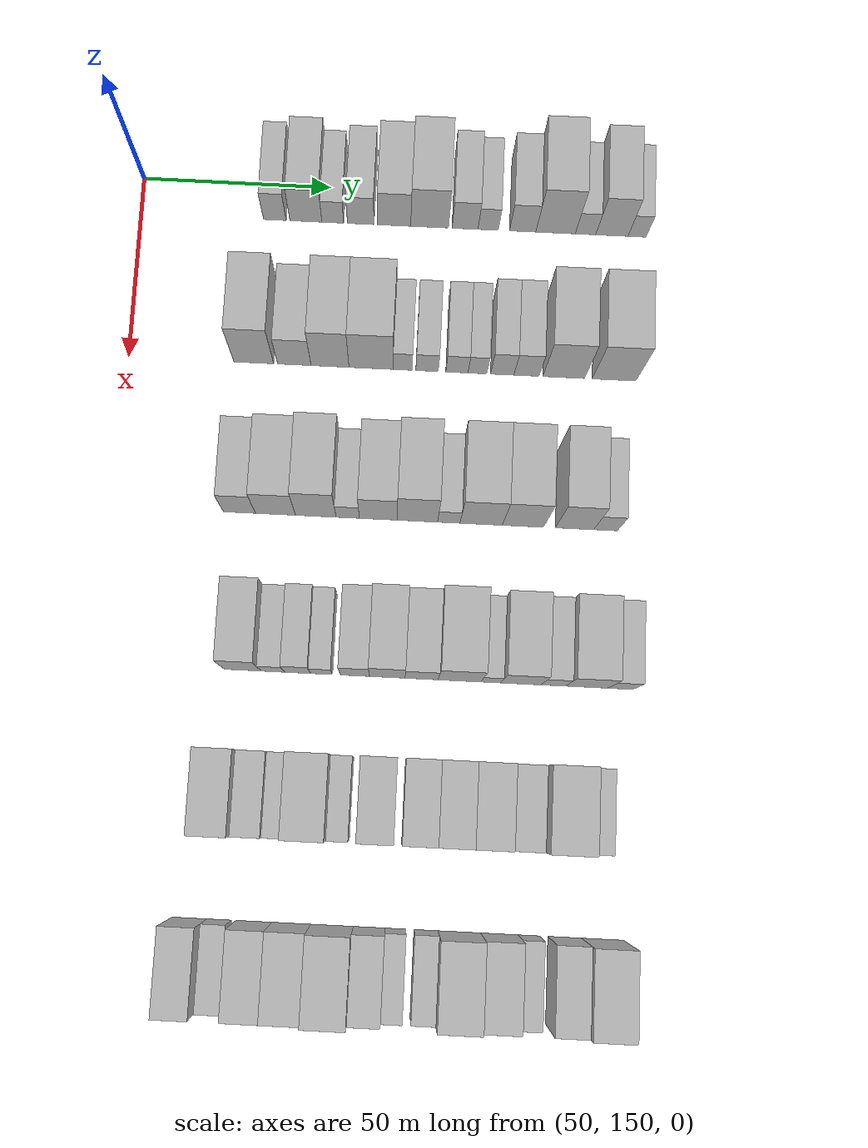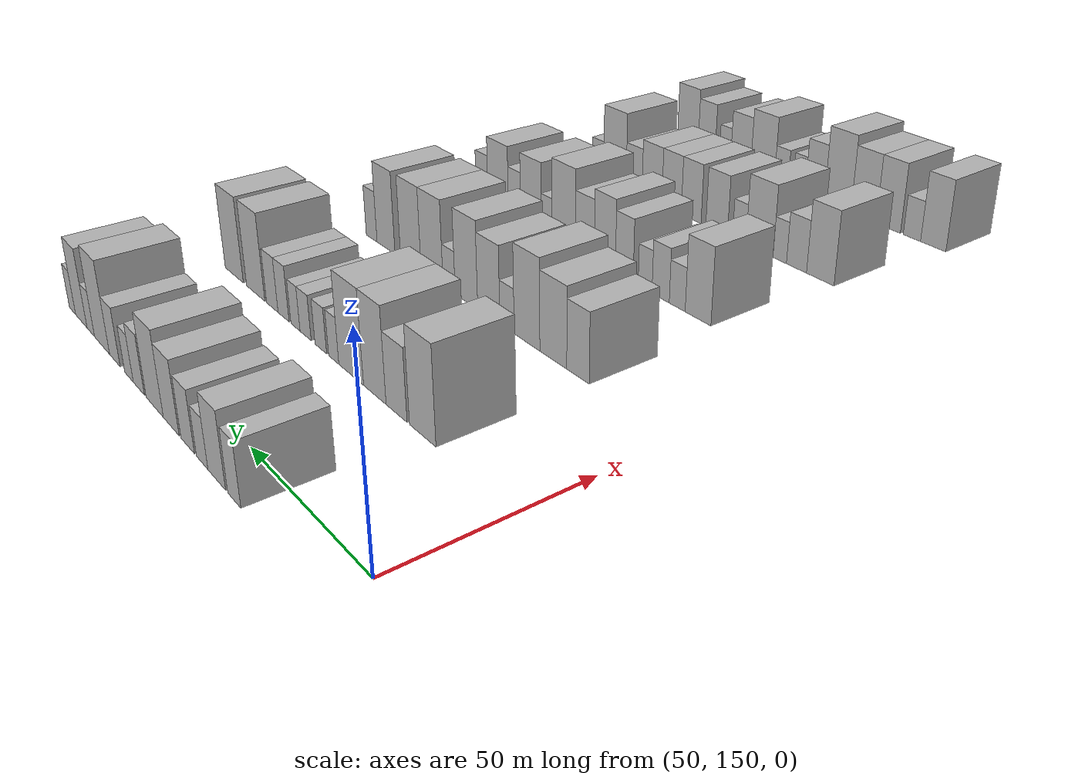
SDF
<sdf version="1.6">
 <world name="default">
  <model name="building_88">
   <static>1</static>
   <pose>50.0000 185.5479 0 0.000000 0.000000 0.000000</pose>
   <link name="link">
    <pose>0 0 7.50 0 0 0</pose>
    <collision name="collision"><geometry><box><size>20.0000 6.0208 15.0000</size></box></geometry></collision>
    <visual name="visual">
     <cast_shadows>0</cast_shadows>
     <geometry><box><size>20.0000 6.0208 15.0000</size></box></geometry>
     <material>
      <script>
       <uri>model://HANNAS_wall/materials/scripts</uri>
       <uri>model://HANNAS_wall/materials/textures</uri>
       <name>vrc/HANNAS_wall</name>
      </script>
     </material>
    </visual>
   </link>
  </model>
  <model name="building_89">
   <static>1</static>
   <pose>50.0000 193.8191 0 0.000000 0.000000 0.000000</pose>
   <link name="link">
    <pose>0 0 9.00 0 0 0</pose>
    <collision name="collision"><geometry><box><size>20.0000 8.5216 18.0000</size></box></geometry></collision>
    <visual name="visual">
     <cast_shadows>0</cast_shadows>
     <geometry><box><size>20.0000 8.5216 18.0000</size></box></geometry>
     <material>
      <script>
       <uri>model://HANNAS_wall/materials/scripts</uri>
       <uri>model://HANNAS_wall/materials/textures</uri>
       <name>vrc/HANNAS_wall</name>
      </script>
     </material>
    </visual>
   </link>
  </model>
  <model name="building_90">
   <static>1</static>
   <pose>50.0000 200.9719 0 0.000000 0.000000 0.000000</pose>
   <link name="link">
    <pose>0 0 6.00 0 0 0</pose>
    <collision name="collision"><geometry><box><size>20.0000 5.7839 12.0000</size></box></geometry></collision>
    <visual name="visual">
     <cast_shadows>0</cast_shadows>
     <geometry><box><size>20.0000 5.7839 12.0000</size></box></geometry>
     <material>
      <script>
       <uri>model://HANNAS_wall/materials/scripts</uri>
       <uri>model://HANNAS_wall/materials/textures</uri>
       <name>vrc/HANNAS_wall</name>
      </script>
     </material>
    </visual>
   </link>
  </model>
  <model name="building_91">
   <static>1</static>
   <pose>50.0000 208.3993 0 0.000000 0.000000 0.000000</pose>
   <link name="link">
    <pose>0 0 7.50 0 0 0</pose>
    <collision name="collision"><geometry><box><size>20.0000 7.0708 15.0000</size></box></geometry></collision>
    <visual name="visual">
     <cast_shadows>0</cast_shadows>
     <geometry><box><size>20.0000 7.0708 15.0000</size></box></geometry>
     <material>
      <script>
       <uri>model://HANNAS_wall/materials/scripts</uri>
       <uri>model://HANNAS_wall/materials/textures</uri>
       <name>vrc/HANNAS_wall</name>
      </script>
     </material>
    </visual>
   </link>
  </model>
  <model name="building_92">
   <static>1</static>
   <pose>50.0000 217.3159 0 0.000000 0.000000 0.000000</pose>
   <link name="link">
    <pose>0 0 9.00 0 0 0</pose>
    <collision name="collision"><geometry><box><size>20.0000 8.7624 18.0000</size></box></geometry></collision>
    <visual name="visual">
     <cast_shadows>0</cast_shadows>
     <geometry><box><size>20.0000 8.7624 18.0000</size></box></geometry>
     <material>
      <script>
       <uri>model://HANNAS_wall/materials/scripts</uri>
       <uri>model://HANNAS_wall/materials/textures</uri>
       <name>vrc/HANNAS_wall</name>
      </script>
     </material>
    </visual>
   </link>
  </model>
  <model name="building_93">
   <static>1</static>
   <pose>50.0000 226.7034 0 0.000000 0.000000 0.000000</pose>
   <link name="link">
    <pose>0 0 10.50 0 0 0</pose>
    <collision name="collision"><geometry><box><size>20.0000 10.0126 21.0000</size></box></geometry></collision>
    <visual name="visual">
     <cast_shadows>0</cast_shadows>
     <geometry><box><size>20.0000 10.0126 21.0000</size></box></geometry>
     <material>
      <script>
       <uri>model://HANNAS_wall/materials/scripts</uri>
       <uri>model://HANNAS_wall/materials/textures</uri>
       <name>vrc/HANNAS_wall</name>
      </script>
     </material>
    </visual>
   </link>
  </model>
  <model name="building_94">
   <static>1</static>
   <pose>50.0000 236.1503 0 0.000000 0.000000 0.000000</pose>
   <link name="link">
    <pose>0 0 7.50 0 0 0</pose>
    <collision name="collision"><geometry><box><size>20.0000 6.8812 15.0000</size></box></geometry></collision>
    <visual name="visual">
     <cast_shadows>0</cast_shadows>
     <geometry><box><size>20.0000 6.8812 15.0000</size></box></geometry>
     <material>
      <script>
       <uri>model://HANNAS_wall/materials/scripts</uri>
       <uri>model://HANNAS_wall/materials/textures</uri>
       <name>vrc/HANNAS_wall</name>
      </script>
     </material>
    </visual>
   </link>
  </model>
  <model name="building_95">
   <static>1</static>
   <pose>50.0000 242.2823 0 0.000000 0.000000 0.000000</pose>
   <link name="link">
    <pose>0 0 6.00 0 0 0</pose>
    <collision name="collision"><geometry><box><size>20.0000 5.3827 12.0000</size></box></geometry></collision>
    <visual name="visual">
     <cast_shadows>0</cast_shadows>
     <geometry><box><size>20.0000 5.3827 12.0000</size></box></geometry>
     <material>
      <script>
       <uri>model://HANNAS_wall/materials/scripts</uri>
       <uri>model://HANNAS_wall/materials/textures</uri>
       <name>vrc/HANNAS_wall</name>
      </script>
     </material>
    </visual>
   </link>
  </model>
  <model name="building_96">
   <static>1</static>
   <pose>50.0000 251.4615 0 0.000000 0.000000 0.000000</pose>
   <link name="link">
    <pose>0 0 7.50 0 0 0</pose>
    <collision name="collision"><geometry><box><size>20.0000 6.9756 15.0000</size></box></geometry></collision>
    <visual name="visual">
     <cast_shadows>0</cast_shadows>
     <geometry><box><size>20.0000 6.9756 15.0000</size></box></geometry>
     <material>
      <script>
       <uri>model://HANNAS_wall/materials/scripts</uri>
       <uri>model://HANNAS_wall/materials/textures</uri>
       <name>vrc/HANNAS_wall</name>
      </script>
     </material>
    </visual>
   </link>
  </model>
  <model name="building_97">
   <static>1</static>
   <pose>50.0000 260.1870 0 0.000000 0.000000 0.000000</pose>
   <link name="link">
    <pose>0 0 12.00 0 0 0</pose>
    <collision name="collision"><geometry><box><size>20.0000 10.4755 24.0000</size></box></geometry></collision>
    <visual name="visual">
     <cast_shadows>0</cast_shadows>
     <geometry><box><size>20.0000 10.4755 24.0000</size></box></geometry>
     <material>
      <script>
       <uri>model://HANNAS_wall/materials/scripts</uri>
       <uri>model://HANNAS_wall/materials/textures</uri>
       <name>vrc/HANNAS_wall</name>
      </script>
     </material>
    </visual>
   </link>
  </model>
  <model name="building_98">
   <static>1</static>
   <pose>50.0000 268.1275 0 0.000000 0.000000 0.000000</pose>
   <link name="link">
    <pose>0 0 6.00 0 0 0</pose>
    <collision name="collision"><geometry><box><size>20.0000 5.4055 12.0000</size></box></geometry></collision>
    <visual name="visual">
     <cast_shadows>0</cast_shadows>
     <geometry><box><size>20.0000 5.4055 12.0000</size></box></geometry>
     <material>
      <script>
       <uri>model://HANNAS_wall/materials/scripts</uri>
       <uri>model://HANNAS_wall/materials/textures</uri>
       <name>vrc/HANNAS_wall</name>
      </script>
     </material>
    </visual>
   </link>
  </model>
  <model name="building_99">
   <static>1</static>
   <pose>50.0000 275.1140 0 0.000000 0.000000 0.000000</pose>
   <link name="link">
    <pose>0 0 10.50 0 0 0</pose>
    <collision name="collision"><geometry><box><size>20.0000 8.5675 21.0000</size></box></geometry></collision>
    <visual name="visual">
     <cast_shadows>0</cast_shadows>
     <geometry><box><size>20.0000 8.5675 21.0000</size></box></geometry>
     <material>
      <script>
       <uri>model://HANNAS_wall/materials/scripts</uri>
       <uri>model://HANNAS_wall/materials/textures</uri>
       <name>vrc/HANNAS_wall</name>
      </script>
     </material>
    </visual>
   </link>
  </model>
  <model name="building_100">
   <static>1</static>
   <pose>50.0000 281.7993 0 0.000000 0.000000 0.000000</pose>
   <link name="link">
    <pose>0 0 6.00 0 0 0</pose>
    <collision name="collision"><geometry><box><size>20.0000 4.8031 12.0000</size></box></geometry></collision>
    <visual name="visual">
     <cast_shadows>0</cast_shadows>
     <geometry><box><size>20.0000 4.8031 12.0000</size></box></geometry>
     <material>
      <script>
       <uri>model://HANNAS_wall/materials/scripts</uri>
       <uri>model://HANNAS_wall/materials/textures</uri>
       <name>vrc/HANNAS_wall</name>
      </script>
     </material>
    </visual>
   </link>
  </model>
  <model name="building_219">
   <static>1</static>
   <pose>90.0000 182.7265 0 0.000000 0.000000 0.000000</pose>
   <link name="link">
    <pose>0 0 12.00 0 0 0</pose>
    <collision name="collision"><geometry><box><size>20.0000 10.3787 24.0000</size></box></geometry></collision>
    <visual name="visual">
     <cast_shadows>0</cast_shadows>
     <geometry><box><size>20.0000 10.3787 24.0000</size></box></geometry>
     <material>
      <script>
       <uri>model://HANNAS_wall/materials/scripts</uri>
       <uri>model://HANNAS_wall/materials/textures</uri>
       <name>vrc/HANNAS_wall</name>
      </script>
     </material>
    </visual>
   </link>
  </model>
  <model name="building_220">
   <static>1</static>
   <pose>90.0000 193.2791 0 0.000000 0.000000 0.000000</pose>
   <link name="link">
    <pose>0 0 9.00 0 0 0</pose>
    <collision name="collision"><geometry><box><size>20.0000 8.7265 18.0000</size></box></geometry></collision>
    <visual name="visual">
     <cast_shadows>0</cast_shadows>
     <geometry><box><size>20.0000 8.7265 18.0000</size></box></geometry>
     <material>
      <script>
       <uri>model://HANNAS_wall/materials/scripts</uri>
       <uri>model://HANNAS_wall/materials/textures</uri>
       <name>vrc/HANNAS_wall</name>
      </script>
     </material>
    </visual>
   </link>
  </model>
  <model name="building_221">
   <static>1</static>
   <pose>90.0000 202.5795 0 0.000000 0.000000 0.000000</pose>
   <link name="link">
    <pose>0 0 12.00 0 0 0</pose>
    <collision name="collision"><geometry><box><size>20.0000 9.8742 24.0000</size></box></geometry></collision>
    <visual name="visual">
     <cast_shadows>0</cast_shadows>
     <geometry><box><size>20.0000 9.8742 24.0000</size></box></geometry>
     <material>
      <script>
       <uri>model://HANNAS_wall/materials/scripts</uri>
       <uri>model://HANNAS_wall/materials/textures</uri>
       <name>vrc/HANNAS_wall</name>
      </script>
     </material>
    </visual>
   </link>
  </model>
  <model name="building_222">
   <static>1</static>
   <pose>90.0000 213.2539 0 0.000000 0.000000 0.000000</pose>
   <link name="link">
    <pose>0 0 12.00 0 0 0</pose>
    <collision name="collision"><geometry><box><size>20.0000 11.4746 24.0000</size></box></geometry></collision>
    <visual name="visual">
     <cast_shadows>0</cast_shadows>
     <geometry><box><size>20.0000 11.4746 24.0000</size></box></geometry>
     <material>
      <script>
       <uri>model://HANNAS_wall/materials/scripts</uri>
       <uri>model://HANNAS_wall/materials/textures</uri>
       <name>vrc/HANNAS_wall</name>
      </script>
     </material>
    </visual>
   </link>
  </model>
  <model name="building_223">
   <static>1</static>
   <pose>90.0000 221.4428 0 0.000000 0.000000 0.000000</pose>
   <link name="link">
    <pose>0 0 6.00 0 0 0</pose>
    <collision name="collision"><geometry><box><size>20.0000 4.9032 12.0000</size></box></geometry></collision>
    <visual name="visual">
     <cast_shadows>0</cast_shadows>
     <geometry><box><size>20.0000 4.9032 12.0000</size></box></geometry>
     <material>
      <script>
       <uri>model://HANNAS_wall/materials/scripts</uri>
       <uri>model://HANNAS_wall/materials/textures</uri>
       <name>vrc/HANNAS_wall</name>
      </script>
     </material>
    </visual>
   </link>
  </model>
  <model name="building_224">
   <static>1</static>
   <pose>90.0000 227.7942 0 0.000000 0.000000 0.000000</pose>
   <link name="link">
    <pose>0 0 6.00 0 0 0</pose>
    <collision name="collision"><geometry><box><size>20.0000 5.7995 12.0000</size></box></geometry></collision>
    <visual name="visual">
     <cast_shadows>0</cast_shadows>
     <geometry><box><size>20.0000 5.7995 12.0000</size></box></geometry>
     <material>
      <script>
       <uri>model://HANNAS_wall/materials/scripts</uri>
       <uri>model://HANNAS_wall/materials/textures</uri>
       <name>vrc/HANNAS_wall</name>
      </script>
     </material>
    </visual>
   </link>
  </model>
  <model name="building_225">
   <static>1</static>
   <pose>90.0000 235.5747 0 0.000000 0.000000 0.000000</pose>
   <link name="link">
    <pose>0 0 6.00 0 0 0</pose>
    <collision name="collision"><geometry><box><size>20.0000 5.7617 12.0000</size></box></geometry></collision>
    <visual name="visual">
     <cast_shadows>0</cast_shadows>
     <geometry><box><size>20.0000 5.7617 12.0000</size></box></geometry>
     <material>
      <script>
       <uri>model://HANNAS_wall/materials/scripts</uri>
       <uri>model://HANNAS_wall/materials/textures</uri>
       <name>vrc/HANNAS_wall</name>
      </script>
     </material>
    </visual>
   </link>
  </model>
  <model name="building_226">
   <static>1</static>
   <pose>90.0000 240.8877 0 0.000000 0.000000 0.000000</pose>
   <link name="link">
    <pose>0 0 6.00 0 0 0</pose>
    <collision name="collision"><geometry><box><size>20.0000 4.8642 12.0000</size></box></geometry></collision>
    <visual name="visual">
     <cast_shadows>0</cast_shadows>
     <geometry><box><size>20.0000 4.8642 12.0000</size></box></geometry>
     <material>
      <script>
       <uri>model://HANNAS_wall/materials/scripts</uri>
       <uri>model://HANNAS_wall/materials/textures</uri>
       <name>vrc/HANNAS_wall</name>
      </script>
     </material>
    </visual>
   </link>
  </model>
  <model name="building_227">
   <static>1</static>
   <pose>90.0000 247.3505 0 0.000000 0.000000 0.000000</pose>
   <link name="link">
    <pose>0 0 7.50 0 0 0</pose>
    <collision name="collision"><geometry><box><size>20.0000 6.0615 15.0000</size></box></geometry></collision>
    <visual name="visual">
     <cast_shadows>0</cast_shadows>
     <geometry><box><size>20.0000 6.0615 15.0000</size></box></geometry>
     <material>
      <script>
       <uri>model://HANNAS_wall/materials/scripts</uri>
       <uri>model://HANNAS_wall/materials/textures</uri>
       <name>vrc/HANNAS_wall</name>
      </script>
     </material>
    </visual>
   </link>
  </model>
  <model name="building_228">
   <static>1</static>
   <pose>90.0000 253.6499 0 0.000000 0.000000 0.000000</pose>
   <link name="link">
    <pose>0 0 7.50 0 0 0</pose>
    <collision name="collision"><geometry><box><size>20.0000 6.5373 15.0000</size></box></geometry></collision>
    <visual name="visual">
     <cast_shadows>0</cast_shadows>
     <geometry><box><size>20.0000 6.5373 15.0000</size></box></geometry>
     <material>
      <script>
       <uri>model://HANNAS_wall/materials/scripts</uri>
       <uri>model://HANNAS_wall/materials/textures</uri>
       <name>vrc/HANNAS_wall</name>
      </script>
     </material>
    </visual>
   </link>
  </model>
  <model name="building_229">
   <static>1</static>
   <pose>90.0000 263.3244 0 0.000000 0.000000 0.000000</pose>
   <link name="link">
    <pose>0 0 12.00 0 0 0</pose>
    <collision name="collision"><geometry><box><size>20.0000 10.8117 24.0000</size></box></geometry></collision>
    <visual name="visual">
     <cast_shadows>0</cast_shadows>
     <geometry><box><size>20.0000 10.8117 24.0000</size></box></geometry>
     <material>
      <script>
       <uri>model://HANNAS_wall/materials/scripts</uri>
       <uri>model://HANNAS_wall/materials/textures</uri>
       <name>vrc/HANNAS_wall</name>
      </script>
     </material>
    </visual>
   </link>
  </model>
  <model name="building_230">
   <static>1</static>
   <pose>90.0000 276.4194 0 0.000000 0.000000 0.000000</pose>
   <link name="link">
    <pose>0 0 12.00 0 0 0</pose>
    <collision name="collision"><geometry><box><size>20.0000 11.3784 24.0000</size></box></geometry></collision>
    <visual name="visual">
     <cast_shadows>0</cast_shadows>
     <geometry><box><size>20.0000 11.3784 24.0000</size></box></geometry>
     <material>
      <script>
       <uri>model://HANNAS_wall/materials/scripts</uri>
       <uri>model://HANNAS_wall/materials/textures</uri>
       <name>vrc/HANNAS_wall</name>
      </script>
     </material>
    </visual>
   </link>
  </model>
  <model name="building_353">
   <static>1</static>
   <pose>130.0000 181.8724 0 0.000000 0.000000 0.000000</pose>
   <link name="link">
    <pose>0 0 9.00 0 0 0</pose>
    <collision name="collision"><geometry><box><size>20.0000 8.1580 18.0000</size></box></geometry></collision>
    <visual name="visual">
     <cast_shadows>0</cast_shadows>
     <geometry><box><size>20.0000 8.1580 18.0000</size></box></geometry>
     <material>
      <script>
       <uri>model://HANNAS_wall/materials/scripts</uri>
       <uri>model://HANNAS_wall/materials/textures</uri>
       <name>vrc/HANNAS_wall</name>
      </script>
     </material>
    </visual>
   </link>
  </model>
  <model name="building_354">
   <static>1</static>
   <pose>130.0000 191.0557 0 0.000000 0.000000 0.000000</pose>
   <link name="link">
    <pose>0 0 10.50 0 0 0</pose>
    <collision name="collision"><geometry><box><size>20.0000 10.2086 21.0000</size></box></geometry></collision>
    <visual name="visual">
     <cast_shadows>0</cast_shadows>
     <geometry><box><size>20.0000 10.2086 21.0000</size></box></geometry>
     <material>
      <script>
       <uri>model://HANNAS_wall/materials/scripts</uri>
       <uri>model://HANNAS_wall/materials/textures</uri>
       <name>vrc/HANNAS_wall</name>
      </script>
     </material>
    </visual>
   </link>
  </model>
  <model name="building_355">
   <static>1</static>
   <pose>130.0000 201.3014 0 0.000000 0.000000 0.000000</pose>
   <link name="link">
    <pose>0 0 12.00 0 0 0</pose>
    <collision name="collision"><geometry><box><size>20.0000 10.2827 24.0000</size></box></geometry></collision>
    <visual name="visual">
     <cast_shadows>0</cast_shadows>
     <geometry><box><size>20.0000 10.2827 24.0000</size></box></geometry>
     <material>
      <script>
       <uri>model://HANNAS_wall/materials/scripts</uri>
       <uri>model://HANNAS_wall/materials/textures</uri>
       <name>vrc/HANNAS_wall</name>
      </script>
     </material>
    </visual>
   </link>
  </model>
  <model name="building_356">
   <static>1</static>
   <pose>130.0000 209.4128 0 0.000000 0.000000 0.000000</pose>
   <link name="link">
    <pose>0 0 6.00 0 0 0</pose>
    <collision name="collision"><geometry><box><size>20.0000 5.9401 12.0000</size></box></geometry></collision>
    <visual name="visual">
     <cast_shadows>0</cast_shadows>
     <geometry><box><size>20.0000 5.9401 12.0000</size></box></geometry>
     <material>
      <script>
       <uri>model://HANNAS_wall/materials/scripts</uri>
       <uri>model://HANNAS_wall/materials/textures</uri>
       <name>vrc/HANNAS_wall</name>
      </script>
     </material>
    </visual>
   </link>
  </model>
  <model name="building_357">
   <static>1</static>
   <pose>130.0000 217.1887 0 0.000000 0.000000 0.000000</pose>
   <link name="link">
    <pose>0 0 10.50 0 0 0</pose>
    <collision name="collision"><geometry><box><size>20.0000 9.6116 21.0000</size></box></geometry></collision>
    <visual name="visual">
     <cast_shadows>0</cast_shadows>
     <geometry><box><size>20.0000 9.6116 21.0000</size></box></geometry>
     <material>
      <script>
       <uri>model://HANNAS_wall/materials/scripts</uri>
       <uri>model://HANNAS_wall/materials/textures</uri>
       <name>vrc/HANNAS_wall</name>
      </script>
     </material>
    </visual>
   </link>
  </model>
  <model name="building_358">
   <static>1</static>
   <pose>130.0000 227.1159 0 0.000000 0.000000 0.000000</pose>
   <link name="link">
    <pose>0 0 12.00 0 0 0</pose>
    <collision name="collision"><geometry><box><size>20.0000 10.2429 24.0000</size></box></geometry></collision>
    <visual name="visual">
     <cast_shadows>0</cast_shadows>
     <geometry><box><size>20.0000 10.2429 24.0000</size></box></geometry>
     <material>
      <script>
       <uri>model://HANNAS_wall/materials/scripts</uri>
       <uri>model://HANNAS_wall/materials/textures</uri>
       <name>vrc/HANNAS_wall</name>
      </script>
     </material>
    </visual>
   </link>
  </model>
  <model name="building_359">
   <static>1</static>
   <pose>130.0000 235.0881 0 0.000000 0.000000 0.000000</pose>
   <link name="link">
    <pose>0 0 6.00 0 0 0</pose>
    <collision name="collision"><geometry><box><size>20.0000 5.7014 12.0000</size></box></geometry></collision>
    <visual name="visual">
     <cast_shadows>0</cast_shadows>
     <geometry><box><size>20.0000 5.7014 12.0000</size></box></geometry>
     <material>
      <script>
       <uri>model://HANNAS_wall/materials/scripts</uri>
       <uri>model://HANNAS_wall/materials/textures</uri>
       <name>vrc/HANNAS_wall</name>
      </script>
     </material>
    </visual>
   </link>
  </model>
  <model name="building_360">
   <static>1</static>
   <pose>130.0000 243.3150 0 0.000000 0.000000 0.000000</pose>
   <link name="link">
    <pose>0 0 12.00 0 0 0</pose>
    <collision name="collision"><geometry><box><size>20.0000 10.7525 24.0000</size></box></geometry></collision>
    <visual name="visual">
     <cast_shadows>0</cast_shadows>
     <geometry><box><size>20.0000 10.7525 24.0000</size></box></geometry>
     <material>
      <script>
       <uri>model://HANNAS_wall/materials/scripts</uri>
       <uri>model://HANNAS_wall/materials/textures</uri>
       <name>vrc/HANNAS_wall</name>
      </script>
     </material>
    </visual>
   </link>
  </model>
  <model name="building_361">
   <static>1</static>
   <pose>130.0000 253.9416 0 0.000000 0.000000 0.000000</pose>
   <link name="link">
    <pose>0 0 12.00 0 0 0</pose>
    <collision name="collision"><geometry><box><size>20.0000 10.5008 24.0000</size></box></geometry></collision>
    <visual name="visual">
     <cast_shadows>0</cast_shadows>
     <geometry><box><size>20.0000 10.5008 24.0000</size></box></geometry>
     <material>
      <script>
       <uri>model://HANNAS_wall/materials/scripts</uri>
       <uri>model://HANNAS_wall/materials/textures</uri>
       <name>vrc/HANNAS_wall</name>
      </script>
     </material>
    </visual>
   </link>
  </model>
  <model name="building_362">
   <static>1</static>
   <pose>130.0000 267.0628 0 0.000000 0.000000 0.000000</pose>
   <link name="link">
    <pose>0 0 12.00 0 0 0</pose>
    <collision name="collision"><geometry><box><size>20.0000 9.7415 24.0000</size></box></geometry></collision>
    <visual name="visual">
     <cast_shadows>0</cast_shadows>
     <geometry><box><size>20.0000 9.7415 24.0000</size></box></geometry>
     <material>
      <script>
       <uri>model://HANNAS_wall/materials/scripts</uri>
       <uri>model://HANNAS_wall/materials/textures</uri>
       <name>vrc/HANNAS_wall</name>
      </script>
     </material>
    </visual>
   </link>
  </model>
  <model name="building_363">
   <static>1</static>
   <pose>130.0000 274.9419 0 0.000000 0.000000 0.000000</pose>
   <link name="link">
    <pose>0 0 7.50 0 0 0</pose>
    <collision name="collision"><geometry><box><size>20.0000 6.0169 15.0000</size></box></geometry></collision>
    <visual name="visual">
     <cast_shadows>0</cast_shadows>
     <geometry><box><size>20.0000 6.0169 15.0000</size></box></geometry>
     <material>
      <script>
       <uri>model://HANNAS_wall/materials/scripts</uri>
       <uri>model://HANNAS_wall/materials/textures</uri>
       <name>vrc/HANNAS_wall</name>
      </script>
     </material>
    </visual>
   </link>
  </model>
  <model name="building_495">
   <static>1</static>
   <pose>170.0000 185.5375 0 0.000000 0.000000 0.000000</pose>
   <link name="link">
    <pose>0 0 10.50 0 0 0</pose>
    <collision name="collision"><geometry><box><size>20.0000 9.1178 21.0000</size></box></geometry></collision>
    <visual name="visual">
     <cast_shadows>0</cast_shadows>
     <geometry><box><size>20.0000 9.1178 21.0000</size></box></geometry>
     <material>
      <script>
       <uri>model://HANNAS_wall/materials/scripts</uri>
       <uri>model://HANNAS_wall/materials/textures</uri>
       <name>vrc/HANNAS_wall</name>
      </script>
     </material>
    </visual>
   </link>
  </model>
  <model name="building_496">
   <static>1</static>
   <pose>170.0000 193.0262 0 0.000000 0.000000 0.000000</pose>
   <link name="link">
    <pose>0 0 6.00 0 0 0</pose>
    <collision name="collision"><geometry><box><size>20.0000 5.8596 12.0000</size></box></geometry></collision>
    <visual name="visual">
     <cast_shadows>0</cast_shadows>
     <geometry><box><size>20.0000 5.8596 12.0000</size></box></geometry>
     <material>
      <script>
       <uri>model://HANNAS_wall/materials/scripts</uri>
       <uri>model://HANNAS_wall/materials/textures</uri>
       <name>vrc/HANNAS_wall</name>
      </script>
     </material>
    </visual>
   </link>
  </model>
  <model name="building_497">
   <static>1</static>
   <pose>170.0000 199.2270 0 0.000000 0.000000 0.000000</pose>
   <link name="link">
    <pose>0 0 7.50 0 0 0</pose>
    <collision name="collision"><geometry><box><size>20.0000 6.5421 15.0000</size></box></geometry></collision>
    <visual name="visual">
     <cast_shadows>0</cast_shadows>
     <geometry><box><size>20.0000 6.5421 15.0000</size></box></geometry>
     <material>
      <script>
       <uri>model://HANNAS_wall/materials/scripts</uri>
       <uri>model://HANNAS_wall/materials/textures</uri>
       <name>vrc/HANNAS_wall</name>
      </script>
     </material>
    </visual>
   </link>
  </model>
  <model name="building_498">
   <static>1</static>
   <pose>170.0000 205.1811 0 0.000000 0.000000 0.000000</pose>
   <link name="link">
    <pose>0 0 6.00 0 0 0</pose>
    <collision name="collision"><geometry><box><size>20.0000 5.3661 12.0000</size></box></geometry></collision>
    <visual name="visual">
     <cast_shadows>0</cast_shadows>
     <geometry><box><size>20.0000 5.3661 12.0000</size></box></geometry>
     <material>
      <script>
       <uri>model://HANNAS_wall/materials/scripts</uri>
       <uri>model://HANNAS_wall/materials/textures</uri>
       <name>vrc/HANNAS_wall</name>
      </script>
     </material>
    </visual>
   </link>
  </model>
  <model name="building_499">
   <static>1</static>
   <pose>170.0000 213.4673 0 0.000000 0.000000 0.000000</pose>
   <link name="link">
    <pose>0 0 9.00 0 0 0</pose>
    <collision name="collision"><geometry><box><size>20.0000 7.2062 18.0000</size></box></geometry></collision>
    <visual name="visual">
     <cast_shadows>0</cast_shadows>
     <geometry><box><size>20.0000 7.2062 18.0000</size></box></geometry>
     <material>
      <script>
       <uri>model://HANNAS_wall/materials/scripts</uri>
       <uri>model://HANNAS_wall/materials/textures</uri>
       <name>vrc/HANNAS_wall</name>
      </script>
     </material>
    </visual>
   </link>
  </model>
  <model name="building_500">
   <static>1</static>
   <pose>170.0000 221.4589 0 0.000000 0.000000 0.000000</pose>
   <link name="link">
    <pose>0 0 10.50 0 0 0</pose>
    <collision name="collision"><geometry><box><size>20.0000 8.7770 21.0000</size></box></geometry></collision>
    <visual name="visual">
     <cast_shadows>0</cast_shadows>
     <geometry><box><size>20.0000 8.7770 21.0000</size></box></geometry>
     <material>
      <script>
       <uri>model://HANNAS_wall/materials/scripts</uri>
       <uri>model://HANNAS_wall/materials/textures</uri>
       <name>vrc/HANNAS_wall</name>
      </script>
     </material>
    </visual>
   </link>
  </model>
  <model name="building_501">
   <static>1</static>
   <pose>170.0000 229.9337 0 0.000000 0.000000 0.000000</pose>
   <link name="link">
    <pose>0 0 9.00 0 0 0</pose>
    <collision name="collision"><geometry><box><size>20.0000 8.1727 18.0000</size></box></geometry></collision>
    <visual name="visual">
     <cast_shadows>0</cast_shadows>
     <geometry><box><size>20.0000 8.1727 18.0000</size></box></geometry>
     <material>
      <script>
       <uri>model://HANNAS_wall/materials/scripts</uri>
       <uri>model://HANNAS_wall/materials/textures</uri>
       <name>vrc/HANNAS_wall</name>
      </script>
     </material>
    </visual>
   </link>
  </model>
  <model name="building_502">
   <static>1</static>
   <pose>170.0000 239.3646 0 0.000000 0.000000 0.000000</pose>
   <link name="link">
    <pose>0 0 12.00 0 0 0</pose>
    <collision name="collision"><geometry><box><size>20.0000 10.6891 24.0000</size></box></geometry></collision>
    <visual name="visual">
     <cast_shadows>0</cast_shadows>
     <geometry><box><size>20.0000 10.6891 24.0000</size></box></geometry>
     <material>
      <script>
       <uri>model://HANNAS_wall/materials/scripts</uri>
       <uri>model://HANNAS_wall/materials/textures</uri>
       <name>vrc/HANNAS_wall</name>
      </script>
     </material>
    </visual>
   </link>
  </model>
  <model name="building_503">
   <static>1</static>
   <pose>170.0000 247.1370 0 0.000000 0.000000 0.000000</pose>
   <link name="link">
    <pose>0 0 6.00 0 0 0</pose>
    <collision name="collision"><geometry><box><size>20.0000 4.8556 12.0000</size></box></geometry></collision>
    <visual name="visual">
     <cast_shadows>0</cast_shadows>
     <geometry><box><size>20.0000 4.8556 12.0000</size></box></geometry>
     <material>
      <script>
       <uri>model://HANNAS_wall/materials/scripts</uri>
       <uri>model://HANNAS_wall/materials/textures</uri>
       <name>vrc/HANNAS_wall</name>
      </script>
     </material>
    </visual>
   </link>
  </model>
  <model name="building_504">
   <static>1</static>
   <pose>170.0000 254.5924 0 0.000000 0.000000 0.000000</pose>
   <link name="link">
    <pose>0 0 10.50 0 0 0</pose>
    <collision name="collision"><geometry><box><size>20.0000 10.0551 21.0000</size></box></geometry></collision>
    <visual name="visual">
     <cast_shadows>0</cast_shadows>
     <geometry><box><size>20.0000 10.0551 21.0000</size></box></geometry>
     <material>
      <script>
       <uri>model://HANNAS_wall/materials/scripts</uri>
       <uri>model://HANNAS_wall/materials/textures</uri>
       <name>vrc/HANNAS_wall</name>
      </script>
     </material>
    </visual>
   </link>
  </model>
  <model name="building_505">
   <static>1</static>
   <pose>170.0000 262.6626 0 0.000000 0.000000 0.000000</pose>
   <link name="link">
    <pose>0 0 7.50 0 0 0</pose>
    <collision name="collision"><geometry><box><size>20.0000 6.0854 15.0000</size></box></geometry></collision>
    <visual name="visual">
     <cast_shadows>0</cast_shadows>
     <geometry><box><size>20.0000 6.0854 15.0000</size></box></geometry>
     <material>
      <script>
       <uri>model://HANNAS_wall/materials/scripts</uri>
       <uri>model://HANNAS_wall/materials/textures</uri>
       <name>vrc/HANNAS_wall</name>
      </script>
     </material>
    </visual>
   </link>
  </model>
  <model name="building_506">
   <static>1</static>
   <pose>170.0000 270.9316 0 0.000000 0.000000 0.000000</pose>
   <link name="link">
    <pose>0 0 10.50 0 0 0</pose>
    <collision name="collision"><geometry><box><size>20.0000 10.4526 21.0000</size></box></geometry></collision>
    <visual name="visual">
     <cast_shadows>0</cast_shadows>
     <geometry><box><size>20.0000 10.4526 21.0000</size></box></geometry>
     <material>
      <script>
       <uri>model://HANNAS_wall/materials/scripts</uri>
       <uri>model://HANNAS_wall/materials/textures</uri>
       <name>vrc/HANNAS_wall</name>
      </script>
     </material>
    </visual>
   </link>
  </model>
  <model name="building_507">
   <static>1</static>
   <pose>170.0000 279.3111 0 0.000000 0.000000 0.000000</pose>
   <link name="link">
    <pose>0 0 7.50 0 0 0</pose>
    <collision name="collision"><geometry><box><size>20.0000 6.3063 15.0000</size></box></geometry></collision>
    <visual name="visual">
     <cast_shadows>0</cast_shadows>
     <geometry><box><size>20.0000 6.3063 15.0000</size></box></geometry>
     <material>
      <script>
       <uri>model://HANNAS_wall/materials/scripts</uri>
       <uri>model://HANNAS_wall/materials/textures</uri>
       <name>vrc/HANNAS_wall</name>
      </script>
     </material>
    </visual>
   </link>
  </model>
  <model name="building_634">
   <static>1</static>
   <pose>210.0000 182.0927 0 0.000000 0.000000 0.000000</pose>
   <link name="link">
    <pose>0 0 10.50 0 0 0</pose>
    <collision name="collision"><geometry><box><size>20.0000 9.4078 21.0000</size></box></geometry></collision>
    <visual name="visual">
     <cast_shadows>0</cast_shadows>
     <geometry><box><size>20.0000 9.4078 21.0000</size></box></geometry>
     <material>
      <script>
       <uri>model://HANNAS_wall/materials/scripts</uri>
       <uri>model://HANNAS_wall/materials/textures</uri>
       <name>vrc/HANNAS_wall</name>
      </script>
     </material>
    </visual>
   </link>
  </model>
  <model name="building_635">
   <static>1</static>
   <pose>210.0000 190.3546 0 0.000000 0.000000 0.000000</pose>
   <link name="link">
    <pose>0 0 7.50 0 0 0</pose>
    <collision name="collision"><geometry><box><size>20.0000 7.1160 15.0000</size></box></geometry></collision>
    <visual name="visual">
     <cast_shadows>0</cast_shadows>
     <geometry><box><size>20.0000 7.1160 15.0000</size></box></geometry>
     <material>
      <script>
       <uri>model://HANNAS_wall/materials/scripts</uri>
       <uri>model://HANNAS_wall/materials/textures</uri>
       <name>vrc/HANNAS_wall</name>
      </script>
     </material>
    </visual>
   </link>
  </model>
  <model name="building_636">
   <static>1</static>
   <pose>210.0000 196.3535 0 0.000000 0.000000 0.000000</pose>
   <link name="link">
    <pose>0 0 6.00 0 0 0</pose>
    <collision name="collision"><geometry><box><size>20.0000 4.8818 12.0000</size></box></geometry></collision>
    <visual name="visual">
     <cast_shadows>0</cast_shadows>
     <geometry><box><size>20.0000 4.8818 12.0000</size></box></geometry>
     <material>
      <script>
       <uri>model://HANNAS_wall/materials/scripts</uri>
       <uri>model://HANNAS_wall/materials/textures</uri>
       <name>vrc/HANNAS_wall</name>
      </script>
     </material>
    </visual>
   </link>
  </model>
  <model name="building_637">
   <static>1</static>
   <pose>210.0000 203.9196 0 0.000000 0.000000 0.000000</pose>
   <link name="link">
    <pose>0 0 10.50 0 0 0</pose>
    <collision name="collision"><geometry><box><size>20.0000 10.2503 21.0000</size></box></geometry></collision>
    <visual name="visual">
     <cast_shadows>0</cast_shadows>
     <geometry><box><size>20.0000 10.2503 21.0000</size></box></geometry>
     <material>
      <script>
       <uri>model://HANNAS_wall/materials/scripts</uri>
       <uri>model://HANNAS_wall/materials/textures</uri>
       <name>vrc/HANNAS_wall</name>
      </script>
     </material>
    </visual>
   </link>
  </model>
  <model name="building_638">
   <static>1</static>
   <pose>210.0000 211.6442 0 0.000000 0.000000 0.000000</pose>
   <link name="link">
    <pose>0 0 6.00 0 0 0</pose>
    <collision name="collision"><geometry><box><size>20.0000 5.1990 12.0000</size></box></geometry></collision>
    <visual name="visual">
     <cast_shadows>0</cast_shadows>
     <geometry><box><size>20.0000 5.1990 12.0000</size></box></geometry>
     <material>
      <script>
       <uri>model://HANNAS_wall/materials/scripts</uri>
       <uri>model://HANNAS_wall/materials/textures</uri>
       <name>vrc/HANNAS_wall</name>
      </script>
     </material>
    </visual>
   </link>
  </model>
  <model name="building_639">
   <static>1</static>
   <pose>210.0000 220.5955 0 0.000000 0.000000 0.000000</pose>
   <link name="link">
    <pose>0 0 9.00 0 0 0</pose>
    <collision name="collision"><geometry><box><size>20.0000 8.7034 18.0000</size></box></geometry></collision>
    <visual name="visual">
     <cast_shadows>0</cast_shadows>
     <geometry><box><size>20.0000 8.7034 18.0000</size></box></geometry>
     <material>
      <script>
       <uri>model://HANNAS_wall/materials/scripts</uri>
       <uri>model://HANNAS_wall/materials/textures</uri>
       <name>vrc/HANNAS_wall</name>
      </script>
     </material>
    </visual>
   </link>
  </model>
  <model name="building_640">
   <static>1</static>
   <pose>210.0000 231.1302 0 0.000000 0.000000 0.000000</pose>
   <link name="link">
    <pose>0 0 9.00 0 0 0</pose>
    <collision name="collision"><geometry><box><size>20.0000 8.3660 18.0000</size></box></geometry></collision>
    <visual name="visual">
     <cast_shadows>0</cast_shadows>
     <geometry><box><size>20.0000 8.3660 18.0000</size></box></geometry>
     <material>
      <script>
       <uri>model://HANNAS_wall/materials/scripts</uri>
       <uri>model://HANNAS_wall/materials/textures</uri>
       <name>vrc/HANNAS_wall</name>
      </script>
     </material>
    </visual>
   </link>
  </model>
  <model name="building_641">
   <static>1</static>
   <pose>210.0000 239.5588 0 0.000000 0.000000 0.000000</pose>
   <link name="link">
    <pose>0 0 9.00 0 0 0</pose>
    <collision name="collision"><geometry><box><size>20.0000 8.4914 18.0000</size></box></geometry></collision>
    <visual name="visual">
     <cast_shadows>0</cast_shadows>
     <geometry><box><size>20.0000 8.4914 18.0000</size></box></geometry>
     <material>
      <script>
       <uri>model://HANNAS_wall/materials/scripts</uri>
       <uri>model://HANNAS_wall/materials/textures</uri>
       <name>vrc/HANNAS_wall</name>
      </script>
     </material>
    </visual>
   </link>
  </model>
  <model name="building_642">
   <static>1</static>
   <pose>210.0000 248.2951 0 0.000000 0.000000 0.000000</pose>
   <link name="link">
    <pose>0 0 9.00 0 0 0</pose>
    <collision name="collision"><geometry><box><size>20.0000 8.9811 18.0000</size></box></geometry></collision>
    <visual name="visual">
     <cast_shadows>0</cast_shadows>
     <geometry><box><size>20.0000 8.9811 18.0000</size></box></geometry>
     <material>
      <script>
       <uri>model://HANNAS_wall/materials/scripts</uri>
       <uri>model://HANNAS_wall/materials/textures</uri>
       <name>vrc/HANNAS_wall</name>
      </script>
     </material>
    </visual>
   </link>
  </model>
  <model name="building_643">
   <static>1</static>
   <pose>210.0000 256.5106 0 0.000000 0.000000 0.000000</pose>
   <link name="link">
    <pose>0 0 7.50 0 0 0</pose>
    <collision name="collision"><geometry><box><size>20.0000 7.4499 15.0000</size></box></geometry></collision>
    <visual name="visual">
     <cast_shadows>0</cast_shadows>
     <geometry><box><size>20.0000 7.4499 15.0000</size></box></geometry>
     <material>
      <script>
       <uri>model://HANNAS_wall/materials/scripts</uri>
       <uri>model://HANNAS_wall/materials/textures</uri>
       <name>vrc/HANNAS_wall</name>
      </script>
     </material>
    </visual>
   </link>
  </model>
  <model name="building_644">
   <static>1</static>
   <pose>210.0000 265.6359 0 0.000000 0.000000 0.000000</pose>
   <link name="link">
    <pose>0 0 12.00 0 0 0</pose>
    <collision name="collision"><geometry><box><size>20.0000 10.8008 24.0000</size></box></geometry></collision>
    <visual name="visual">
     <cast_shadows>0</cast_shadows>
     <geometry><box><size>20.0000 10.8008 24.0000</size></box></geometry>
     <material>
      <script>
       <uri>model://HANNAS_wall/materials/scripts</uri>
       <uri>model://HANNAS_wall/materials/textures</uri>
       <name>vrc/HANNAS_wall</name>
      </script>
     </material>
    </visual>
   </link>
  </model>
  <model name="building_645">
   <static>1</static>
   <pose>210.0000 273.8610 0 0.000000 0.000000 0.000000</pose>
   <link name="link">
    <pose>0 0 6.00 0 0 0</pose>
    <collision name="collision"><geometry><box><size>20.0000 5.6493 12.0000</size></box></geometry></collision>
    <visual name="visual">
     <cast_shadows>0</cast_shadows>
     <geometry><box><size>20.0000 5.6493 12.0000</size></box></geometry>
     <material>
      <script>
       <uri>model://HANNAS_wall/materials/scripts</uri>
       <uri>model://HANNAS_wall/materials/textures</uri>
       <name>vrc/HANNAS_wall</name>
      </script>
     </material>
    </visual>
   </link>
  </model>
  <model name="building_766">
   <static>1</static>
   <pose>250.0000 177.0227 0 0.000000 0.000000 0.000000</pose>
   <link name="link">
    <pose>0 0 10.50 0 0 0</pose>
    <collision name="collision"><geometry><box><size>20.0000 8.4300 21.0000</size></box></geometry></collision>
    <visual name="visual">
     <cast_shadows>0</cast_shadows>
     <geometry><box><size>20.0000 8.4300 21.0000</size></box></geometry>
     <material>
      <script>
       <uri>model://HANNAS_wall/materials/scripts</uri>
       <uri>model://HANNAS_wall/materials/textures</uri>
       <name>vrc/HANNAS_wall</name>
      </script>
     </material>
    </visual>
   </link>
  </model>
  <model name="building_767">
   <static>1</static>
   <pose>250.0000 184.1896 0 0.000000 0.000000 0.000000</pose>
   <link name="link">
    <pose>0 0 6.00 0 0 0</pose>
    <collision name="collision"><geometry><box><size>20.0000 5.9039 12.0000</size></box></geometry></collision>
    <visual name="visual">
     <cast_shadows>0</cast_shadows>
     <geometry><box><size>20.0000 5.9039 12.0000</size></box></geometry>
     <material>
      <script>
       <uri>model://HANNAS_wall/materials/scripts</uri>
       <uri>model://HANNAS_wall/materials/textures</uri>
       <name>vrc/HANNAS_wall</name>
      </script>
     </material>
    </visual>
   </link>
  </model>
  <model name="building_768">
   <static>1</static>
   <pose>250.0000 192.4840 0 0.000000 0.000000 0.000000</pose>
   <link name="link">
    <pose>0 0 10.50 0 0 0</pose>
    <collision name="collision"><geometry><box><size>20.0000 8.6848 21.0000</size></box></geometry></collision>
    <visual name="visual">
     <cast_shadows>0</cast_shadows>
     <geometry><box><size>20.0000 8.6848 21.0000</size></box></geometry>
     <material>
      <script>
       <uri>model://HANNAS_wall/materials/scripts</uri>
       <uri>model://HANNAS_wall/materials/textures</uri>
       <name>vrc/HANNAS_wall</name>
      </script>
     </material>
    </visual>
   </link>
  </model>
  <model name="building_769">
   <static>1</static>
   <pose>250.0000 201.4716 0 0.000000 0.000000 0.000000</pose>
   <link name="link">
    <pose>0 0 10.50 0 0 0</pose>
    <collision name="collision"><geometry><box><size>20.0000 9.2904 21.0000</size></box></geometry></collision>
    <visual name="visual">
     <cast_shadows>0</cast_shadows>
     <geometry><box><size>20.0000 9.2904 21.0000</size></box></geometry>
     <material>
      <script>
       <uri>model://HANNAS_wall/materials/scripts</uri>
       <uri>model://HANNAS_wall/materials/textures</uri>
       <name>vrc/HANNAS_wall</name>
      </script>
     </material>
    </visual>
   </link>
  </model>
  <model name="building_770">
   <static>1</static>
   <pose>250.0000 211.2309 0 0.000000 0.000000 0.000000</pose>
   <link name="link">
    <pose>0 0 12.00 0 0 0</pose>
    <collision name="collision"><geometry><box><size>20.0000 10.2281 24.0000</size></box></geometry></collision>
    <visual name="visual">
     <cast_shadows>0</cast_shadows>
     <geometry><box><size>20.0000 10.2281 24.0000</size></box></geometry>
     <material>
      <script>
       <uri>model://HANNAS_wall/materials/scripts</uri>
       <uri>model://HANNAS_wall/materials/textures</uri>
       <name>vrc/HANNAS_wall</name>
      </script>
     </material>
    </visual>
   </link>
  </model>
  <model name="building_771">
   <static>1</static>
   <pose>250.0000 220.1245 0 0.000000 0.000000 0.000000</pose>
   <link name="link">
    <pose>0 0 9.00 0 0 0</pose>
    <collision name="collision"><geometry><box><size>20.0000 7.5590 18.0000</size></box></geometry></collision>
    <visual name="visual">
     <cast_shadows>0</cast_shadows>
     <geometry><box><size>20.0000 7.5590 18.0000</size></box></geometry>
     <material>
      <script>
       <uri>model://HANNAS_wall/materials/scripts</uri>
       <uri>model://HANNAS_wall/materials/textures</uri>
       <name>vrc/HANNAS_wall</name>
      </script>
     </material>
    </visual>
   </link>
  </model>
  <model name="building_772">
   <static>1</static>
   <pose>250.0000 226.3802 0 0.000000 0.000000 0.000000</pose>
   <link name="link">
    <pose>0 0 6.00 0 0 0</pose>
    <collision name="collision"><geometry><box><size>20.0000 4.9526 12.0000</size></box></geometry></collision>
    <visual name="visual">
     <cast_shadows>0</cast_shadows>
     <geometry><box><size>20.0000 4.9526 12.0000</size></box></geometry>
     <material>
      <script>
       <uri>model://HANNAS_wall/materials/scripts</uri>
       <uri>model://HANNAS_wall/materials/textures</uri>
       <name>vrc/HANNAS_wall</name>
      </script>
     </material>
    </visual>
   </link>
  </model>
  <model name="building_773">
   <static>1</static>
   <pose>250.0000 233.7072 0 0.000000 0.000000 0.000000</pose>
   <link name="link">
    <pose>0 0 6.00 0 0 0</pose>
    <collision name="collision"><geometry><box><size>20.0000 5.7014 12.0000</size></box></geometry></collision>
    <visual name="visual">
     <cast_shadows>0</cast_shadows>
     <geometry><box><size>20.0000 5.7014 12.0000</size></box></geometry>
     <material>
      <script>
       <uri>model://HANNAS_wall/materials/scripts</uri>
       <uri>model://HANNAS_wall/materials/textures</uri>
       <name>vrc/HANNAS_wall</name>
      </script>
     </material>
    </visual>
   </link>
  </model>
  <model name="building_774">
   <static>1</static>
   <pose>250.0000 241.7088 0 0.000000 0.000000 0.000000</pose>
   <link name="link">
    <pose>0 0 10.50 0 0 0</pose>
    <collision name="collision"><geometry><box><size>20.0000 10.3018 21.0000</size></box></geometry></collision>
    <visual name="visual">
     <cast_shadows>0</cast_shadows>
     <geometry><box><size>20.0000 10.3018 21.0000</size></box></geometry>
     <material>
      <script>
       <uri>model://HANNAS_wall/materials/scripts</uri>
       <uri>model://HANNAS_wall/materials/textures</uri>
       <name>vrc/HANNAS_wall</name>
      </script>
     </material>
    </visual>
   </link>
  </model>
  <model name="building_775">
   <static>1</static>
   <pose>250.0000 251.3298 0 0.000000 0.000000 0.000000</pose>
   <link name="link">
    <pose>0 0 9.00 0 0 0</pose>
    <collision name="collision"><geometry><box><size>20.0000 8.9401 18.0000</size></box></geometry></collision>
    <visual name="visual">
     <cast_shadows>0</cast_shadows>
     <geometry><box><size>20.0000 8.9401 18.0000</size></box></geometry>
     <material>
      <script>
       <uri>model://HANNAS_wall/materials/scripts</uri>
       <uri>model://HANNAS_wall/materials/textures</uri>
       <name>vrc/HANNAS_wall</name>
      </script>
     </material>
    </visual>
   </link>
  </model>
  <model name="building_776">
   <static>1</static>
   <pose>250.0000 258.3629 0 0.000000 0.000000 0.000000</pose>
   <link name="link">
    <pose>0 0 6.00 0 0 0</pose>
    <collision name="collision"><geometry><box><size>20.0000 5.1261 12.0000</size></box></geometry></collision>
    <visual name="visual">
     <cast_shadows>0</cast_shadows>
     <geometry><box><size>20.0000 5.1261 12.0000</size></box></geometry>
     <material>
      <script>
       <uri>model://HANNAS_wall/materials/scripts</uri>
       <uri>model://HANNAS_wall/materials/textures</uri>
       <name>vrc/HANNAS_wall</name>
      </script>
     </material>
    </visual>
   </link>
  </model>
  <model name="building_777">
   <static>1</static>
   <pose>250.0000 266.9387 0 0.000000 0.000000 0.000000</pose>
   <link name="link">
    <pose>0 0 9.00 0 0 0</pose>
    <collision name="collision"><geometry><box><size>20.0000 8.0256 18.0000</size></box></geometry></collision>
    <visual name="visual">
     <cast_shadows>0</cast_shadows>
     <geometry><box><size>20.0000 8.0256 18.0000</size></box></geometry>
     <material>
      <script>
       <uri>model://HANNAS_wall/materials/scripts</uri>
       <uri>model://HANNAS_wall/materials/textures</uri>
       <name>vrc/HANNAS_wall</name>
      </script>
     </material>
    </visual>
   </link>
  </model>
  <model name="building_778">
   <static>1</static>
   <pose>250.0000 275.9614 0 0.000000 0.000000 0.000000</pose>
   <link name="link">
    <pose>0 0 10.50 0 0 0</pose>
    <collision name="collision"><geometry><box><size>20.0000 10.0198 21.0000</size></box></geometry></collision>
    <visual name="visual">
     <cast_shadows>0</cast_shadows>
     <geometry><box><size>20.0000 10.0198 21.0000</size></box></geometry>
     <material>
      <script>
       <uri>model://HANNAS_wall/materials/scripts</uri>
       <uri>model://HANNAS_wall/materials/textures</uri>
       <name>vrc/HANNAS_wall</name>
      </script>
     </material>
    </visual>
   </link>
  </model>
 </world>
</sdf>
